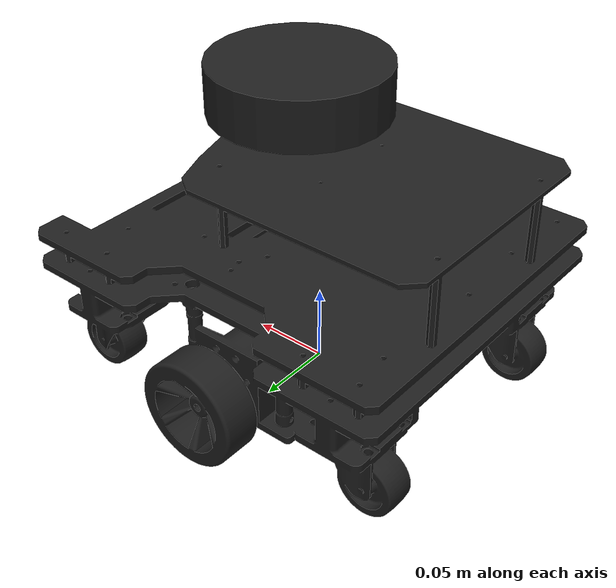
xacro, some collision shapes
<?xml version="1.0"?>
<robot name="ired_robot" xmlns:xacro="http://ros.org/wiki/xacro">
  <xacro:include filename="$(find ired_simulation)/urdf/common_properties.xacro"/>
  <xacro:include filename="$(find ired_simulation)/urdf/ired_robot.gazebo.xacro" />

  <!-- link -->
  <link name="base_footprint"/>
  <link name="imu_link"/>

  <link name="base_link">
    <visual>
      <origin xyz="0.0 0.05 -0.0585" rpy="1.57 0.0 3.14"/>
      <geometry>
        <mesh filename="package://ired_simulation/meshes/Body.stl" scale="0.001 0.001 0.001"/>
      </geometry>
      <material name="light_black"/>
    </visual>
    <collision>
      <origin xyz="0.0 0.0 0.0" rpy="0.0 0.0 0.0"/>
      <geometry>
        <box size="0.25 0.18 0.143"/>
      </geometry>
    </collision>
    <inertial>
      <origin xyz="0 0 0" rpy="0 0 0"/>
      <mass value="8.2573504e-01"/>
      <inertia ixx="2.2124416e-03" ixy="-1.2294101e-05" ixz="3.4938785e-05"
               iyy="2.1193702e-03" iyz="-5.0120904e-06"
               izz="2.0064271e-03" />
    </inertial>
  </link>

  <link name="base_scan">
    <visual>
      <origin xyz="0.09 -0.75 -0.143" rpy="0.0 0.0 0.0"/>
      <geometry>
        <mesh filename="package://ired_simulation/meshes/LiDAR.stl" scale="0.001 0.001 0.001"/>
      </geometry>
      <material name="dark"/>
    </visual>
    <collision>
      <origin xyz="0.015 0 -0.0065" rpy="0 0 0"/>
      <geometry>
        <cylinder length="0.0315" radius="0.055"/>
      </geometry>
    </collision>

    <inertial>
      <mass value="0.114" />
      <origin xyz="0 0 0" />
      <inertia ixx="0.001" ixy="0.0" ixz="0.0"
               iyy="0.001" iyz="0.0"
               izz="0.001" />
    </inertial>
  </link>

  <link name="wheel_left_link">
    <visual>
      <origin xyz="0.0 0.0 0.0" rpy="0.0 -1.57 1.57"/>
      <geometry>
        <mesh filename="package://ired_simulation/meshes/Wheel.stl" scale="0.001 0.001 0.001"/>
      </geometry>
      <material name="black"/>
    </visual>
    <collision>
      <origin xyz="0 0 0" rpy="0 0 0"/>
      <geometry>
        <cylinder length="0.018" radius="0.033"/>
      </geometry>
    </collision>

    <inertial>
      <origin xyz="0 0 0" />
      <mass value="2.8498940e-02" />
      <inertia ixx="1.1175580e-05" ixy="-4.2369783e-11" ixz="-5.9381719e-09"
               iyy="1.1192413e-05" iyz="-1.4400107e-11"
               izz="2.0712558e-05" />
      </inertial>
  </link>

  <link name="wheel_right_link">
    <visual>
      <origin xyz="0.0 0.0 0.0" rpy="0.0 1.57 1.57"/>
      <geometry>
        <mesh filename="package://ired_simulation/meshes/Wheel.stl" scale="0.001 0.001 0.001"/>
      </geometry>
      <material name="black"/>
    </visual>
    <collision>
      <origin xyz="0 0 0" rpy="0 0 0"/>
      <geometry>
        <cylinder length="0.018" radius="0.033"/>
      </geometry>
    </collision>

    <inertial>
      <origin xyz="0 0 0" />
      <mass value="2.8498940e-02" />
      <inertia ixx="1.1175580e-05" ixy="-4.2369783e-11" ixz="-5.9381719e-09"
               iyy="1.1192413e-05" iyz="-1.4400107e-11"
               izz="2.0712558e-05" />
      </inertial>
  </link>

  <link name="caster_front_link">
    <collision>
      <origin xyz="0 0.005 0" rpy="0 0 0"/>
      <geometry>
        <box size="0.033 0.027 0.1"/>
      </geometry>
    </collision>

    <inertial>
      <origin xyz="0 0 0" />
      <mass value="0.005" />
      <inertia ixx="0.001" ixy="0.0" ixz="0.0"
               iyy="0.001" iyz="0.0"
               izz="0.001" />
    </inertial>
  </link>

  <link name="caster_back_link">
    <collision>
      <origin xyz="0 0.005 0" rpy="0 0 0"/>
      <geometry>
        <box size="0.033 0.027 0.1"/>
      </geometry>
    </collision>

    <inertial>
      <origin xyz="0 0 0" />
      <mass value="0.005" />
      <inertia ixx="0.001" ixy="0.0" ixz="0.0"
               iyy="0.001" iyz="0.0"
               izz="0.001" />
    </inertial>
  </link>

  <!-- joint -->
  <joint name="base_joint" type="fixed">
    <parent link="base_footprint"/>
    <child link="base_link"/>
    <origin xyz="0.0 0.0 0.0975" rpy="0.0 0.0 0.0"/>
  </joint>
  <joint name="imu_joint" type="fixed">
    <parent link="base_link"/>
    <child link="imu_link"/>
    <origin xyz="0.0 0.0 0.0" rpy="0.0 0.0 0.0"/>
  </joint>
  <joint name="scan_joint" type="fixed">
    <parent link="base_link"/>
    <child link="base_scan"/>
    <origin xyz="0.0 0.0 0.0963195" rpy="0.0 0.0 0.0"/>
  </joint>
  <joint name="wheel_left_joint" type="continuous">
    <parent link="base_link"/>
    <child link="wheel_left_link"/>
    <axis xyz="0 0 1"/>
    <origin xyz="0.0 0.097 -0.068" rpy="-1.57 0.0 0.0"/>
  </joint>
  <joint name="wheel_right_joint" type="continuous">
    <parent link="base_link"/>
    <child link="wheel_right_link"/>
    <axis xyz="0 0 1"/>
    <origin xyz="0.0 -0.080 -0.068" rpy="-1.57 0.0 0.0"/>
  </joint>
  <joint name="caster_front_joint" type="fixed">
    <parent link="base_link"/>
    <child link="caster_front_link"/>
    <origin xyz="0.11 0 -0.078" rpy="-1.57 0 0"/>
  </joint>
  <joint name="caster_back_joint" type="fixed">
    <parent link="base_link"/>
    <child link="caster_back_link"/>
    <origin xyz="-0.11 0 -0.078" rpy="-1.57 0 0"/>
  </joint>

</robot>
